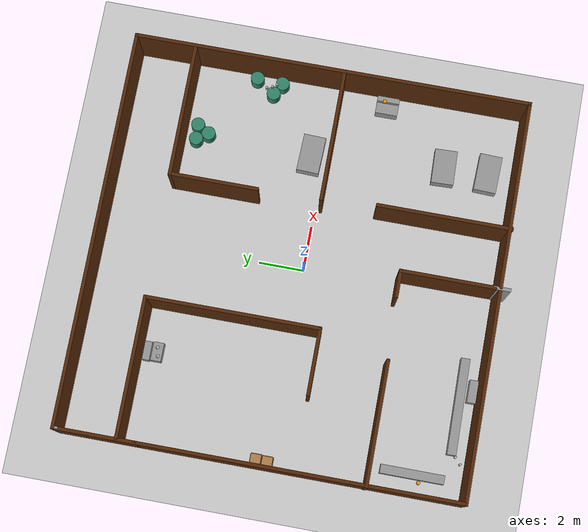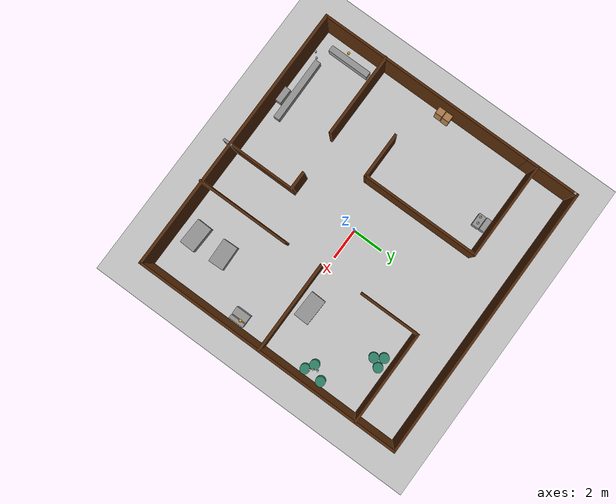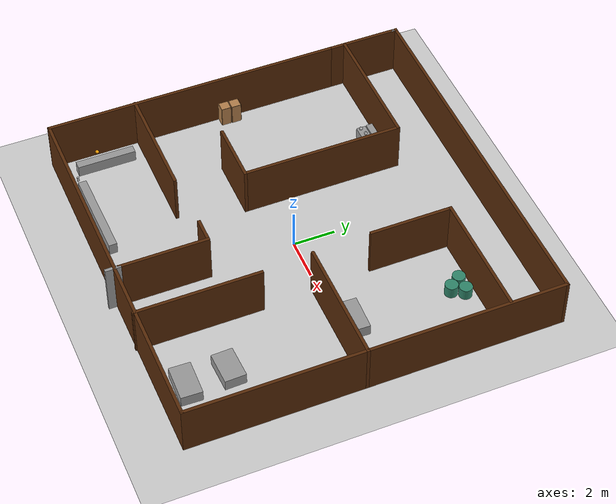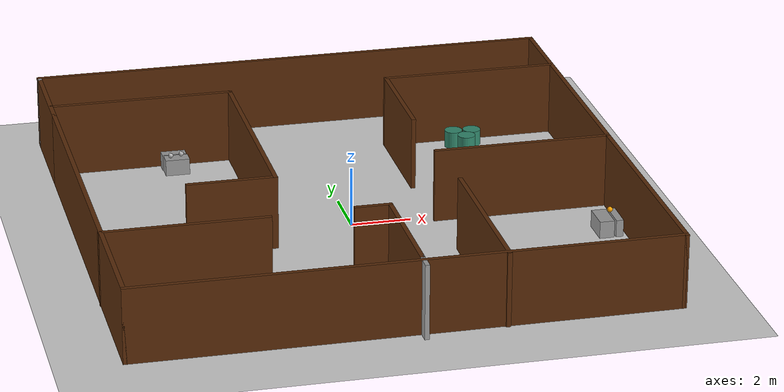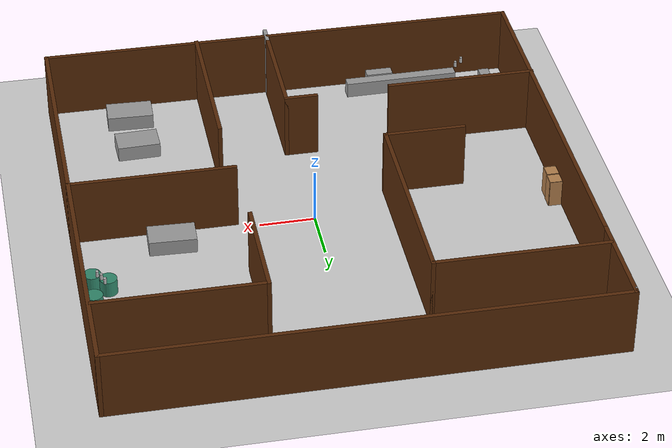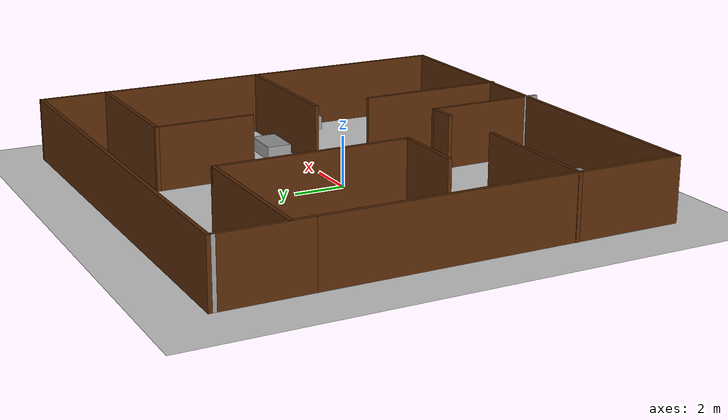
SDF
<sdf version="1.6">
 <world name="default">
  <light name="sun" type="directional">
   <pose>0 0 10 0 -0 0</pose>
   <diffuse>0.8 0.8 0.8 1</diffuse>
   <specular>0.2 0.2 0.2 1</specular>
   <attenuation>
    <range>1000</range>
    <constant>0.9</constant>
    <linear>0.01</linear>
    <quadratic>0.001</quadratic>
   </attenuation>
   <direction>-0.5 0.1 -0.9</direction>
  </light>
  <model name="ground_plane">
   <static>1</static>
   <link name="link">
    <collision name="collision">
     <geometry><plane><normal>0 0 1</normal><size>100 100</size></plane></geometry>
     <surface>
      <contact><collide_bitmask>65535</collide_bitmask></contact>
      <friction><ode><mu>100</mu><mu2>50</mu2></ode></friction>
     </surface>
    </collision>
    <visual name="visual">
     <cast_shadows>0</cast_shadows>
     <geometry><plane><normal>0 0 1</normal><size>100 100</size></plane></geometry>
     <material>
      <script><uri>file://media/materials/scripts/gazebo.material</uri><name>Gazebo/Grey</name></script>
     </material>
    </visual>
   </link>
  </model>
  <gravity>0 0 -9.8</gravity>
  <magnetic_field>6e-06 2.3e-05 -4.2e-05</magnetic_field>
  <atmosphere type="adiabatic"/>
  <physics name="default_physics" default="0" type="ode">
   <max_step_size>0.001</max_step_size>
   <real_time_factor>1</real_time_factor>
   <real_time_update_rate>1000</real_time_update_rate>
  </physics>
  <scene><ambient>0.4 0.4 0.4 1</ambient><background>0.7 0.7 0.7 1</background><shadows>1</shadows></scene>
  <audio><device>default</device></audio>
  <spherical_coordinates>
   <surface_model>EARTH_WGS84</surface_model>
   <latitude_deg>0</latitude_deg>
   <longitude_deg>0</longitude_deg>
   <elevation>0</elevation>
   <heading_deg>0</heading_deg>
  </spherical_coordinates>
  <model name="Untitled">
   <pose>-0.15852 0.10692 0 0 -0 0</pose>
   <link name="Wall_1">
    <collision name="Wall_1_Collision">
     <geometry><box><size>14.25 0.15 2.5</size></box></geometry>
     <pose>0 0 1.25 0 -0 0</pose>
    </collision>
    <visual name="Wall_1_Visual">
     <pose>0 0 1.25 0 -0 0</pose>
     <geometry><box><size>14.25 0.15 2.5</size></box></geometry>
     <material>
      <script><uri>file://media/materials/scripts/gazebo.material</uri><name>Gazebo/Grey</name></script>
      <ambient>0.341176 0.160784 0.0313726 1</ambient>
     </material>
     <meta><layer>0</layer></meta>
    </visual>
    <pose>-8.79002 -1.56412 0 0 -0 -1.5708</pose>
   </link>
   <link name="Wall_10">
    <collision name="Wall_10_Collision">
     <geometry><box><size>17.75 0.15 2.5</size></box></geometry>
     <pose>0 0 1.25 0 -0 0</pose>
    </collision>
    <visual name="Wall_10_Visual">
     <pose>0 0 1.25 0 -0 0</pose>
     <geometry><box><size>17.75 0.15 2.5</size></box></geometry>
     <material>
      <script><uri>file://media/materials/scripts/gazebo.material</uri><name>Gazebo/Grey</name></script>
      <ambient>0.341176 0.160784 0.0313726 1</ambient>
     </material>
     <meta><layer>0</layer></meta>
    </visual>
    <pose>0.009979 8.98588 0 0 -0 3.14159</pose>
   </link>
   <link name="Wall_11">
    <collision name="Wall_11_Collision">
     <geometry><box><size>3.65 0.15 2.5</size></box></geometry>
     <pose>0 0 1.25 0 -0 0</pose>
    </collision>
    <visual name="Wall_11_Visual">
     <pose>0 0 1.25 0 -0 0</pose>
     <geometry><box><size>3.65 0.15 2.5</size></box></geometry>
     <material>
      <script><uri>file://media/materials/scripts/gazebo.material</uri><name>Gazebo/Grey</name></script>
      <ambient>0.341176 0.160784 0.0313726 1</ambient>
     </material>
     <meta><layer>0</layer></meta>
    </visual>
    <pose>-8.79002 7.23588 0 0 -0 -1.5708</pose>
   </link>
   <link name="Wall_13">
    <collision name="Wall_13_Collision">
     <geometry><box><size>6.25 0.15 2.5</size></box></geometry>
     <pose>0 0 1.25 0 -0 0</pose>
    </collision>
    <visual name="Wall_13_Visual">
     <pose>0 0 1.25 0 -0 0</pose>
     <geometry><box><size>6.25 0.15 2.5</size></box></geometry>
     <material>
      <script><uri>file://media/materials/scripts/gazebo.material</uri><name>Gazebo/Grey</name></script>
      <ambient>0.341176 0.160784 0.0313726 1</ambient>
     </material>
     <meta><layer>0</layer></meta>
    </visual>
    <pose>-5.68038 6.27302 0 0 -0 0</pose>
   </link>
   <link name="Wall_14">
    <collision name="Wall_14_Collision">
     <geometry><box><size>7.75 0.15 2.5</size></box></geometry>
     <pose>0 0 1.25 0 -0 0</pose>
    </collision>
    <visual name="Wall_14_Visual">
     <pose>0 0 1.25 0 -0 0</pose>
     <geometry><box><size>7.75 0.15 2.5</size></box></geometry>
     <material>
      <script><uri>file://media/materials/scripts/gazebo.material</uri><name>Gazebo/Grey</name></script>
      <ambient>0.341176 0.160784 0.0313726 1</ambient>
     </material>
     <meta><layer>0</layer></meta>
    </visual>
    <pose>-2.63038 2.47302 0 0 -0 -1.5708</pose>
   </link>
   <link name="Wall_15">
    <collision name="Wall_15_Collision">
     <geometry><box><size>3 0.15 2.5</size></box></geometry>
     <pose>0 0 1.25 0 -0 0</pose>
    </collision>
    <visual name="Wall_15_Visual">
     <pose>0 0 1.25 0 -0 0</pose>
     <geometry><box><size>3 0.15 2.5</size></box></geometry>
     <material>
      <script><uri>file://media/materials/scripts/gazebo.material</uri><name>Gazebo/Grey</name></script>
      <ambient>0.341176 0.160784 0.0313726 1</ambient>
     </material>
     <meta><layer>0</layer></meta>
    </visual>
    <pose>-4.05538 -1.32698 0 0 -0 3.14159</pose>
   </link>
   <link name="Wall_17">
    <collision name="Wall_17_Collision">
     <geometry><box><size>5.5 0.15 2.5</size></box></geometry>
     <pose>0 0 1.25 0 -0 0</pose>
    </collision>
    <visual name="Wall_17_Visual">
     <pose>0 0 1.25 0 -0 0</pose>
     <geometry><box><size>5.5 0.15 2.5</size></box></geometry>
     <material>
      <script><uri>file://media/materials/scripts/gazebo.material</uri><name>Gazebo/Grey</name></script>
      <ambient>0.341176 0.160784 0.0313726 1</ambient>
     </material>
     <meta><layer>0</layer></meta>
    </visual>
    <pose>-6.13629 -4.40725 0 0 -0 0</pose>
   </link>
   <link name="Wall_19">
    <collision name="Wall_19_Collision">
     <geometry><box><size>4.25 0.15 2.5</size></box></geometry>
     <pose>0 0 1.25 0 -0 0</pose>
    </collision>
    <visual name="Wall_19_Visual">
     <pose>0 0 1.25 0 -0 0</pose>
     <geometry><box><size>4.25 0.15 2.5</size></box></geometry>
     <material>
      <script><uri>file://media/materials/scripts/gazebo.material</uri><name>Gazebo/Grey</name></script>
      <ambient>0.341176 0.160784 0.0313726 1</ambient>
     </material>
     <meta><layer>0</layer></meta>
    </visual>
    <pose>0.45304 -6.33588 0 0 -0 -1.5708</pose>
   </link>
   <link name="Wall_20">
    <collision name="Wall_20_Collision">
     <geometry><box><size>0.75 0.15 2.5</size></box></geometry>
     <pose>0 0 1.25 0 -0 0</pose>
    </collision>
    <visual name="Wall_20_Visual">
     <pose>0 0 1.25 0 -0 0</pose>
     <geometry><box><size>0.75 0.15 2.5</size></box></geometry>
     <material>
      <script><uri>file://media/materials/scripts/gazebo.material</uri><name>Gazebo/Grey</name></script>
      <ambient>1 1 1 1</ambient>
     </material>
     <meta><layer>0</layer></meta>
    </visual>
    <pose>0.45304 -8.68588 0 0 -0 -1.5708</pose>
   </link>
   <link name="Wall_23">
    <collision name="Wall_23_Collision">
     <geometry><box><size>1.25 0.15 2.5</size></box></geometry>
     <pose>0 0 1.25 0 -0 0</pose>
    </collision>
    <visual name="Wall_23_Visual">
     <pose>0 0 1.25 0 -0 0</pose>
     <geometry><box><size>1.25 0.15 2.5</size></box></geometry>
     <material>
      <script><uri>file://media/materials/scripts/gazebo.material</uri><name>Gazebo/Grey</name></script>
      <ambient>0.341176 0.160784 0.0313726 1</ambient>
     </material>
     <meta><layer>0</layer></meta>
    </visual>
    <pose>-0.09696 -4.28588 0 0 -0 3.14159</pose>
   </link>
   <link name="Wall_25">
    <collision name="Wall_25_Collision">
     <geometry><box><size>6 0.15 2.5</size></box></geometry>
     <pose>0 0 1.25 0 -0 0</pose>
    </collision>
    <visual name="Wall_25_Visual">
     <pose>0 0 1.25 0 -0 0</pose>
     <geometry><box><size>6 0.15 2.5</size></box></geometry>
     <material>
      <script><uri>file://media/materials/scripts/gazebo.material</uri><name>Gazebo/Grey</name></script>
      <ambient>0.341176 0.160784 0.0313726 1</ambient>
     </material>
     <meta><layer>0</layer></meta>
    </visual>
    <pose>3.12311 -5.75448 0 0 -0 -1.5708</pose>
   </link>
   <link name="Wall_29">
    <collision name="Wall_29_Collision">
     <geometry><box><size>6 0.15 2.5</size></box></geometry>
     <pose>0 0 1.25 0 -0 0</pose>
    </collision>
    <visual name="Wall_29_Visual">
     <pose>0 0 1.25 0 -0 0</pose>
     <geometry><box><size>6 0.15 2.5</size></box></geometry>
     <material>
      <script><uri>file://media/materials/scripts/gazebo.material</uri><name>Gazebo/Grey</name></script>
      <ambient>0.341176 0.160784 0.0313726 1</ambient>
     </material>
     <meta><layer>0</layer></meta>
    </visual>
    <pose>5.88629 -0.361691 0 0 -0 0</pose>
   </link>
   <link name="Wall_3">
    <collision name="Wall_3_Collision">
     <geometry><box><size>17.75 0.15 2.5</size></box></geometry>
     <pose>0 0 1.25 0 -0 0</pose>
    </collision>
    <visual name="Wall_3_Visual">
     <pose>0 0 1.25 0 -0 0</pose>
     <geometry><box><size>17.75 0.15 2.5</size></box></geometry>
     <material>
      <script><uri>file://media/materials/scripts/gazebo.material</uri><name>Gazebo/Grey</name></script>
      <ambient>0.341176 0.160784 0.0313726 1</ambient>
     </material>
     <meta><layer>0</layer></meta>
    </visual>
    <pose>0.009979 -8.61412 0 0 -0 0</pose>
   </link>
   <link name="Wall_31">
    <collision name="Wall_31_Collision">
     <geometry><box><size>6 0.15 2.5</size></box></geometry>
     <pose>0 0 1.25 0 -0 0</pose>
    </collision>
    <visual name="Wall_31_Visual">
     <pose>0 0 1.25 0 -0 0</pose>
     <geometry><box><size>6 0.15 2.5</size></box></geometry>
     <material>
      <script><uri>file://media/materials/scripts/gazebo.material</uri><name>Gazebo/Grey</name></script>
      <ambient>0.341176 0.160784 0.0313726 1</ambient>
     </material>
     <meta><layer>0</layer></meta>
    </visual>
    <pose>5.80537 6.31348 0 0 -0 0</pose>
   </link>
   <link name="Wall_33">
    <collision name="Wall_33_Collision">
     <geometry><box><size>4 0.15 2.5</size></box></geometry>
     <pose>0 0 1.25 0 -0 0</pose>
    </collision>
    <visual name="Wall_33_Visual">
     <pose>0 0 1.25 0 -0 0</pose>
     <geometry><box><size>4 0.15 2.5</size></box></geometry>
     <material>
      <script><uri>file://media/materials/scripts/gazebo.material</uri><name>Gazebo/Grey</name></script>
      <ambient>0.341176 0.160784 0.0313726 1</ambient>
     </material>
     <meta><layer>0</layer></meta>
    </visual>
    <pose>2.88037 4.38848 0 0 -0 -1.5708</pose>
   </link>
   <link name="Wall_4">
    <collision name="Wall_4_Collision">
     <geometry><box><size>17.75 0.15 2.5</size></box></geometry>
     <pose>0 0 1.25 0 -0 0</pose>
    </collision>
    <visual name="Wall_4_Visual">
     <pose>0 0 1.25 0 -0 0</pose>
     <geometry><box><size>17.75 0.15 2.5</size></box></geometry>
     <material>
      <script><uri>file://media/materials/scripts/gazebo.material</uri><name>Gazebo/Grey</name></script>
      <ambient>0.341176 0.160784 0.0313726 1</ambient>
     </material>
     <meta><layer>0</layer></meta>
    </visual>
    <pose>8.80998 0.185881 0 0 -0 1.5708</pose>
   </link>
   <link name="Wall_8">
    <collision name="Wall_8_Collision">
     <geometry><box><size>0.15 0.15 2.5</size></box></geometry>
     <pose>0 0 1.25 0 -0 0</pose>
    </collision>
    <visual name="Wall_8_Visual">
     <pose>0 0 1.25 0 -0 0</pose>
     <geometry><box><size>0.15 0.15 2.5</size></box></geometry>
     <material>
      <script><uri>file://media/materials/scripts/gazebo.material</uri><name>Gazebo/Grey</name></script>
      <ambient>1 1 1 1</ambient>
     </material>
     <meta><layer>0</layer></meta>
    </visual>
    <pose>-8.79002 8.83588 0 0 -0 0</pose>
   </link>
   <static>1</static>
  </model>
  <model name="Untitled_0">
   <link name="link_0">
    <inertial>
     <mass>0.243181</mass>
     <inertia>
      <ixx>0.0141855</ixx>
      <ixy>0</ixy>
      <ixz>0</ixz>
      <iyy>0.0141855</iyy>
      <iyz>0</iyz>
      <izz>0.0114259</izz>
     </inertia>
    </inertial>
    <pose>2e-06 -1e-06 0 0 -0 0</pose>
    <visual name="visual">
     <geometry><cylinder><radius>0.306546</radius><length>0.579707</length></cylinder></geometry>
     <material>
      <lighting>1</lighting>
      <script><uri>file://media/materials/scripts/gazebo.material</uri><name>Gazebo/Grey</name></script>
      <ambient>0.188 0.525 0.416 1</ambient>
      <shader type="vertex"><normal_map>__default__</normal_map></shader>
      <diffuse>0.188 0.525 0.416 1</diffuse>
      <specular>0 0 0 1</specular>
      <emissive>0 0 0 1</emissive>
     </material>
    </visual>
    <collision name="collision">
     <geometry><cylinder><radius>0.306546</radius><length>0.579707</length></cylinder></geometry>
     <surface>
      <friction>
       <ode><mu>1</mu><mu2>1</mu2><fdir1>0 0 0</fdir1><slip1>0</slip1><slip2>0</slip2></ode>
       <torsional>
        <coefficient>1</coefficient>
        <patch_radius>0</patch_radius>
        <surface_radius>0</surface_radius>
        <use_patch_radius>1</use_patch_radius>
        <ode><slip>0</slip></ode>
       </torsional>
      </friction>
      <bounce><restitution_coefficient>0</restitution_coefficient><threshold>1e+06</threshold></bounce>
      <contact>
       <collide_without_contact>0</collide_without_contact>
       <collide_without_contact_bitmask>1</collide_without_contact_bitmask>
       <collide_bitmask>1</collide_bitmask>
       <ode>
        <soft_cfm>0</soft_cfm>
        <soft_erp>0.2</soft_erp>
        <kp>1e+13</kp>
        <kd>1</kd>
        <max_vel>0.01</max_vel>
        <min_depth>0</min_depth>
       </ode>
       <bullet>
        <split_impulse>1</split_impulse>
        <split_impulse_penetration_threshold>-0.01</split_impulse_penetration_threshold>
        <soft_cfm>0</soft_cfm>
        <soft_erp>0.2</soft_erp>
        <kp>1e+13</kp>
        <kd>1</kd>
       </bullet>
      </contact>
     </surface>
    </collision>
   </link>
   <static>0</static>
   <pose>5.32766 5.32556 0.289851 0 0 -0.063666</pose>
  </model>
  <model name="Untitled_0_clone">
   <link name="link_0">
    <inertial>
     <mass>0.243181</mass>
     <inertia>
      <ixx>0.0141855</ixx>
      <ixy>0</ixy>
      <ixz>0</ixz>
      <iyy>0.0141855</iyy>
      <iyz>0</iyz>
      <izz>0.0114259</izz>
     </inertia>
    </inertial>
    <pose>2e-06 -1e-06 0 0 -0 0</pose>
    <visual name="visual">
     <geometry><cylinder><radius>0.306546</radius><length>0.587771</length></cylinder></geometry>
     <material>
      <lighting>1</lighting>
      <script><uri>file://media/materials/scripts/gazebo.material</uri><name>Gazebo/Grey</name></script>
      <ambient>0.188 0.525 0.416 1</ambient>
      <shader type="vertex"><normal_map>__default__</normal_map></shader>
      <diffuse>0.188 0.525 0.416 1</diffuse>
      <specular>0 0 0 1</specular>
      <emissive>0 0 0 1</emissive>
     </material>
    </visual>
    <collision name="collision">
     <geometry><cylinder><radius>0.306546</radius><length>0.587771</length></cylinder></geometry>
     <surface>
      <friction>
       <ode><mu>1</mu><mu2>1</mu2><fdir1>0 0 0</fdir1><slip1>0</slip1><slip2>0</slip2></ode>
       <torsional>
        <coefficient>1</coefficient>
        <patch_radius>0</patch_radius>
        <surface_radius>0</surface_radius>
        <use_patch_radius>1</use_patch_radius>
        <ode><slip>0</slip></ode>
       </torsional>
      </friction>
      <bounce><restitution_coefficient>0</restitution_coefficient><threshold>1e+06</threshold></bounce>
      <contact>
       <collide_without_contact>0</collide_without_contact>
       <collide_without_contact_bitmask>1</collide_without_contact_bitmask>
       <collide_bitmask>1</collide_bitmask>
       <ode>
        <soft_cfm>0</soft_cfm>
        <soft_erp>0.2</soft_erp>
        <kp>1e+13</kp>
        <kd>1</kd>
        <max_vel>0.01</max_vel>
        <min_depth>0</min_depth>
       </ode>
       <bullet>
        <split_impulse>1</split_impulse>
        <split_impulse_penetration_threshold>-0.01</split_impulse_penetration_threshold>
        <soft_cfm>0</soft_cfm>
        <soft_erp>0.2</soft_erp>
        <kp>1e+13</kp>
        <kd>1</kd>
       </bullet>
      </contact>
     </surface>
    </collision>
   </link>
   <static>0</static>
   <pose>4.99425 5.84043 0.293646 0 -0 0.15214</pose>
  </model>
  <model name="Untitled_0_clone_0">
   <link name="link_0">
    <inertial>
     <mass>0.243181</mass>
     <inertia>
      <ixx>0.0141855</ixx>
      <ixy>0</ixy>
      <ixz>0</ixz>
      <iyy>0.0141855</iyy>
      <iyz>0</iyz>
      <izz>0.0114259</izz>
     </inertia>
    </inertial>
    <pose>2e-06 -1e-06 0 0 -0 0</pose>
    <visual name="visual">
     <geometry><cylinder><radius>0.306546</radius><length>0.551301</length></cylinder></geometry>
     <material>
      <lighting>1</lighting>
      <script><uri>file://media/materials/scripts/gazebo.material</uri><name>Gazebo/Grey</name></script>
      <ambient>0.188 0.525 0.416 1</ambient>
      <shader type="vertex"><normal_map>__default__</normal_map></shader>
      <diffuse>0.188 0.525 0.416 1</diffuse>
      <specular>0 0 0 1</specular>
      <emissive>0 0 0 1</emissive>
     </material>
    </visual>
    <collision name="collision">
     <geometry><cylinder><radius>0.306546</radius><length>0.551301</length></cylinder></geometry>
     <surface>
      <friction>
       <ode><mu>1</mu><mu2>1</mu2><fdir1>0 0 0</fdir1><slip1>0</slip1><slip2>0</slip2></ode>
       <torsional>
        <coefficient>1</coefficient>
        <patch_radius>0</patch_radius>
        <surface_radius>0</surface_radius>
        <use_patch_radius>1</use_patch_radius>
        <ode><slip>0</slip></ode>
       </torsional>
      </friction>
      <bounce><restitution_coefficient>0</restitution_coefficient><threshold>1e+06</threshold></bounce>
      <contact>
       <collide_without_contact>0</collide_without_contact>
       <collide_without_contact_bitmask>1</collide_without_contact_bitmask>
       <collide_bitmask>1</collide_bitmask>
       <ode>
        <soft_cfm>0</soft_cfm>
        <soft_erp>0.2</soft_erp>
        <kp>1e+13</kp>
        <kd>1</kd>
        <max_vel>0.01</max_vel>
        <min_depth>0</min_depth>
       </ode>
       <bullet>
        <split_impulse>1</split_impulse>
        <split_impulse_penetration_threshold>-0.01</split_impulse_penetration_threshold>
        <soft_cfm>0</soft_cfm>
        <soft_erp>0.2</soft_erp>
        <kp>1e+13</kp>
        <kd>1</kd>
       </bullet>
      </contact>
     </surface>
    </collision>
   </link>
   <static>0</static>
   <pose>5.65495 5.87158 0.275651 0 -0 -0.047159</pose>
  </model>
  <model name="Untitled_0_clone_1">
   <link name="link_0">
    <inertial>
     <mass>0.243181</mass>
     <inertia>
      <ixx>0.0141855</ixx>
      <ixy>0</ixy>
      <ixz>0</ixz>
      <iyy>0.0141855</iyy>
      <iyz>0</iyz>
      <izz>0.0114259</izz>
     </inertia>
    </inertial>
    <pose>2e-06 -1e-06 0 0 -0 0</pose>
    <visual name="visual">
     <geometry><cylinder><radius>0.306546</radius><length>0.584194</length></cylinder></geometry>
     <material>
      <lighting>1</lighting>
      <script><uri>file://media/materials/scripts/gazebo.material</uri><name>Gazebo/Grey</name></script>
      <ambient>0.188 0.525 0.416 1</ambient>
      <shader type="vertex"><normal_map>__default__</normal_map></shader>
      <diffuse>0.188 0.525 0.416 1</diffuse>
      <specular>0 0 0 1</specular>
      <emissive>0 0 0 1</emissive>
     </material>
    </visual>
    <collision name="collision">
     <geometry><cylinder><radius>0.306546</radius><length>0.584194</length></cylinder></geometry>
     <surface>
      <friction>
       <ode><mu>1</mu><mu2>1</mu2><fdir1>0 0 0</fdir1><slip1>0</slip1><slip2>0</slip2></ode>
       <torsional>
        <coefficient>1</coefficient>
        <patch_radius>0</patch_radius>
        <surface_radius>0</surface_radius>
        <use_patch_radius>1</use_patch_radius>
        <ode><slip>0</slip></ode>
       </torsional>
      </friction>
      <bounce><restitution_coefficient>0</restitution_coefficient><threshold>1e+06</threshold></bounce>
      <contact>
       <collide_without_contact>0</collide_without_contact>
       <collide_without_contact_bitmask>1</collide_without_contact_bitmask>
       <collide_bitmask>1</collide_bitmask>
       <ode>
        <soft_cfm>0</soft_cfm>
        <soft_erp>0.2</soft_erp>
        <kp>1e+13</kp>
        <kd>1</kd>
        <max_vel>0.01</max_vel>
        <min_depth>0</min_depth>
       </ode>
       <bullet>
        <split_impulse>1</split_impulse>
        <split_impulse_penetration_threshold>-0.01</split_impulse_penetration_threshold>
        <soft_cfm>0</soft_cfm>
        <soft_erp>0.2</soft_erp>
        <kp>1e+13</kp>
        <kd>1</kd>
       </bullet>
      </contact>
     </surface>
    </collision>
   </link>
   <static>0</static>
   <pose>7.69368 2.78855 0.292093 0 0 -1.59377</pose>
  </model>
  <model name="Untitled_0_clone_2">
   <link name="link_0">
    <inertial>
     <mass>0.243181</mass>
     <inertia>
      <ixx>0.0141855</ixx>
      <ixy>0</ixy>
      <ixz>0</ixz>
      <iyy>0.0141855</iyy>
      <iyz>0</iyz>
      <izz>0.0114259</izz>
     </inertia>
    </inertial>
    <pose>2e-06 -1e-06 0 0 -0 0</pose>
    <visual name="visual">
     <geometry><cylinder><radius>0.306546</radius><length>0.592981</length></cylinder></geometry>
     <material>
      <lighting>1</lighting>
      <script><uri>file://media/materials/scripts/gazebo.material</uri><name>Gazebo/Grey</name></script>
      <ambient>0.188 0.525 0.416 1</ambient>
      <shader type="vertex"><normal_map>__default__</normal_map></shader>
      <diffuse>0.188 0.525 0.416 1</diffuse>
      <specular>0 0 0 1</specular>
      <emissive>0 0 0 1</emissive>
     </material>
    </visual>
    <collision name="collision">
     <geometry><cylinder><radius>0.306546</radius><length>0.592981</length></cylinder></geometry>
     <surface>
      <friction>
       <ode><mu>1</mu><mu2>1</mu2><fdir1>0 0 0</fdir1><slip1>0</slip1><slip2>0</slip2></ode>
       <torsional>
        <coefficient>1</coefficient>
        <patch_radius>0</patch_radius>
        <surface_radius>0</surface_radius>
        <use_patch_radius>1</use_patch_radius>
        <ode><slip>0</slip></ode>
       </torsional>
      </friction>
      <bounce><restitution_coefficient>0</restitution_coefficient><threshold>1e+06</threshold></bounce>
      <contact>
       <collide_without_contact>0</collide_without_contact>
       <collide_without_contact_bitmask>1</collide_without_contact_bitmask>
       <collide_bitmask>1</collide_bitmask>
       <ode>
        <soft_cfm>0</soft_cfm>
        <soft_erp>0.2</soft_erp>
        <kp>1e+13</kp>
        <kd>1</kd>
        <max_vel>0.01</max_vel>
        <min_depth>0</min_depth>
       </ode>
       <bullet>
        <split_impulse>1</split_impulse>
        <split_impulse_penetration_threshold>-0.01</split_impulse_penetration_threshold>
        <soft_cfm>0</soft_cfm>
        <soft_erp>0.2</soft_erp>
        <kp>1e+13</kp>
        <kd>1</kd>
       </bullet>
      </contact>
     </surface>
    </collision>
   </link>
   <static>0</static>
   <pose>8.21247 2.46182 0.296487 0 -0 0.046328</pose>
  </model>
  <model name="Untitled_0_clone_3">
   <link name="link_0">
    <inertial>
     <mass>0.243181</mass>
     <inertia>
      <ixx>0.0141855</ixx>
      <ixy>0</ixy>
      <ixz>0</ixz>
      <iyy>0.0141855</iyy>
      <iyz>0</iyz>
      <izz>0.0114259</izz>
     </inertia>
    </inertial>
    <pose>2e-06 -1e-06 0 0 -0 0</pose>
    <visual name="visual">
     <geometry><cylinder><radius>0.306546</radius><length>0.597391</length></cylinder></geometry>
     <material>
      <lighting>1</lighting>
      <script><uri>file://media/materials/scripts/gazebo.material</uri><name>Gazebo/Grey</name></script>
      <ambient>0.188 0.525 0.416 1</ambient>
      <shader type="vertex"><normal_map>__default__</normal_map></shader>
      <diffuse>0.188 0.525 0.416 1</diffuse>
      <specular>0 0 0 1</specular>
      <emissive>0 0 0 1</emissive>
     </material>
    </visual>
    <collision name="collision">
     <geometry><cylinder><radius>0.306546</radius><length>0.597391</length></cylinder></geometry>
     <surface>
      <friction>
       <ode><mu>1</mu><mu2>1</mu2><fdir1>0 0 0</fdir1><slip1>0</slip1><slip2>0</slip2></ode>
       <torsional>
        <coefficient>1</coefficient>
        <patch_radius>0</patch_radius>
        <surface_radius>0</surface_radius>
        <use_patch_radius>1</use_patch_radius>
        <ode><slip>0</slip></ode>
       </torsional>
      </friction>
      <bounce><restitution_coefficient>0</restitution_coefficient><threshold>1e+06</threshold></bounce>
      <contact>
       <collide_without_contact>0</collide_without_contact>
       <collide_without_contact_bitmask>1</collide_without_contact_bitmask>
       <collide_bitmask>1</collide_bitmask>
       <ode>
        <soft_cfm>0</soft_cfm>
        <soft_erp>0.2</soft_erp>
        <kp>1e+13</kp>
        <kd>1</kd>
        <max_vel>0.01</max_vel>
        <min_depth>0</min_depth>
       </ode>
       <bullet>
        <split_impulse>1</split_impulse>
        <split_impulse_penetration_threshold>-0.01</split_impulse_penetration_threshold>
        <soft_cfm>0</soft_cfm>
        <soft_erp>0.2</soft_erp>
        <kp>1e+13</kp>
        <kd>1</kd>
       </bullet>
      </contact>
     </surface>
    </collision>
   </link>
   <static>0</static>
   <pose>8.26515 3.62294 0.298695 0 -0 0.335465</pose>
  </model>
  <model name="unit_box">
   <pose>5.21841 0.602262 0.280367 0 -0 -0.034101</pose>
   <link name="link">
    <inertial>
     <mass>1</mass>
     <inertia>
      <ixx>0.166667</ixx>
      <ixy>0</ixy>
      <ixz>0</ixz>
      <iyy>0.166667</iyy>
      <iyz>0</iyz>
      <izz>0.166667</izz>
     </inertia>
    </inertial>
    <collision name="collision"><geometry><box><size>1.69431 1 0.560734</size></box></geometry></collision>
    <visual name="visual">
     <geometry><box><size>1.69431 1 0.560734</size></box></geometry>
     <material>
      <script><name>Gazebo/Grey</name><uri>file://media/materials/scripts/gazebo.material</uri></script>
     </material>
    </visual>
   </link>
  </model>
  <model name="beer">
   <link name="link">
    <pose>0 0 0.115 0 -0 0</pose>
    <inertial>
     <mass>0.39</mass>
     <inertia><ixx>0.00058</ixx><ixy>0</ixy><ixz>0</ixz><iyy>0.00058</iyy><iyz>0</iyz><izz>0.00019</izz></inertia>
    </inertial>
    <collision name="collision">
     <geometry><cylinder><radius>0.055</radius><length>0.23</length></cylinder></geometry>
    </collision>
    <visual name="visual">
     <geometry><cylinder><radius>0.055</radius><length>0.23</length></cylinder></geometry>
     <material>
      <script>
       <uri>model://beer/materials/scripts</uri>
       <uri>model://beer/materials/textures</uri>
       <name>Beer/Diffuse</name>
      </script>
     </material>
    </visual>
   </link>
   <pose>7.83155 3.12397 0.635012 -1e-06 2.6e-05 0.054014</pose>
  </model>
  <model name="beer_clone">
   <link name="link">
    <pose>0 0 0.115 0 -0 0</pose>
    <inertial>
     <mass>0.39</mass>
     <inertia><ixx>0.00058</ixx><ixy>0</ixy><ixz>0</ixz><iyy>0.00058</iyy><iyz>0</iyz><izz>0.00019</izz></inertia>
    </inertial>
    <collision name="collision">
     <geometry><cylinder><radius>0.055</radius><length>0.23</length></cylinder></geometry>
    </collision>
    <visual name="visual">
     <geometry><cylinder><radius>0.055</radius><length>0.23</length></cylinder></geometry>
     <material>
      <script>
       <uri>model://beer/materials/scripts</uri>
       <uri>model://beer/materials/textures</uri>
       <name>Beer/Diffuse</name>
      </script>
     </material>
    </visual>
   </link>
   <pose>8.05023 2.69495 0.635003 9e-06 3.4e-05 0.062193</pose>
  </model>
  <model name="unit_box_clone_1">
   <pose>5.70218 -5.38059 0.280362 -1e-05 0 0.03201</pose>
   <link name="link">
    <inertial>
     <mass>1</mass>
     <inertia>
      <ixx>0.166667</ixx>
      <ixy>0</ixy>
      <ixz>0</ixz>
      <iyy>0.166667</iyy>
      <iyz>0</iyz>
      <izz>0.166667</izz>
     </inertia>
    </inertial>
    <collision name="collision"><geometry><box><size>1.56456 1 0.560734</size></box></geometry></collision>
    <visual name="visual">
     <geometry><box><size>1.56456 1 0.560734</size></box></geometry>
     <material>
      <script><name>Gazebo/Grey</name><uri>file://media/materials/scripts/gazebo.material</uri></script>
     </material>
    </visual>
   </link>
  </model>
  <model name="unit_box_clone">
   <pose>5.75644 -7.35515 0.280367 0 -0 -0.0341</pose>
   <link name="link">
    <inertial>
     <mass>1</mass>
     <inertia>
      <ixx>0.166667</ixx>
      <ixy>0</ixy>
      <ixz>0</ixz>
      <iyy>0.166667</iyy>
      <iyz>0</iyz>
      <izz>0.166667</izz>
     </inertia>
    </inertial>
    <collision name="collision"><geometry><box><size>1.69431 1 0.560734</size></box></geometry></collision>
    <visual name="visual">
     <geometry><box><size>1.69431 1 0.560734</size></box></geometry>
     <material>
      <script><name>Gazebo/Grey</name><uri>file://media/materials/scripts/gazebo.material</uri></script>
     </material>
    </visual>
   </link>
  </model>
  <model name="beer_clone_clone_0">
   <link name="link">
    <pose>0 0 0.115 0 -0 0</pose>
    <inertial>
     <mass>0.39</mass>
     <inertia><ixx>0.00058</ixx><ixy>0</ixy><ixz>0</ixz><iyy>0.00058</iyy><iyz>0</iyz><izz>0.00019</izz></inertia>
    </inertial>
    <collision name="collision">
     <geometry><cylinder><radius>0.055</radius><length>0.23</length></cylinder></geometry>
    </collision>
    <visual name="visual">
     <geometry><cylinder><radius>0.055</radius><length>0.23</length></cylinder></geometry>
     <material>
      <script>
       <uri>model://beer/materials/scripts</uri>
       <uri>model://beer/materials/textures</uri>
       <name>Beer/Diffuse</name>
      </script>
     </material>
    </visual>
   </link>
   <pose>7.92795 2.8719 0.635012 -1e-06 2.7e-05 0.059275</pose>
  </model>
  <model name="cabinet">
   <static>1</static>
   <link name="cabinet_bottom_plate">
    <inertial>
     <pose>0 0 -1 0 -0 0</pose>
     <inertia><ixx>2.05</ixx><ixy>0</ixy><ixz>0</ixz><iyy>2.05</iyy><iyz>0</iyz><izz>2.05</izz></inertia>
     <mass>25</mass>
    </inertial>
    <collision name="cabinet_bottom_plate_geom">
     <pose>0 0 0.01 0 -0 0</pose>
     <geometry><box><size>0.45 0.45 0.02</size></box></geometry>
    </collision>
    <visual name="cabinet_bottom_plate_geom_visual">
     <pose>0 0 0.01 0 -0 0</pose>
     <geometry><box><size>0.45 0.45 0.02</size></box></geometry>
     <material>
      <script><uri>file://media/materials/scripts/gazebo.material</uri><name>Gazebo/Wood</name></script>
     </material>
    </visual>
    <collision name="cabinet_bottom_plate_geom_cabinet_back_plate">
     <pose>0.235 0 0.51 0 -0 0</pose>
     <geometry><box><size>0.02 0.45 1.02</size></box></geometry>
    </collision>
    <visual name="cabinet_bottom_plate_geom_cabinet_back_plate_visual">
     <pose>0.235 0 0.51 0 -0 0</pose>
     <geometry><box><size>0.02 0.45 1.02</size></box></geometry>
     <material>
      <script><uri>file://media/materials/scripts/gazebo.material</uri><name>Gazebo/Wood</name></script>
     </material>
    </visual>
    <collision name="cabinet_bottom_plate_geom_cabinet_left_plate">
     <pose>0 0.235 0.51 0 -0 0</pose>
     <geometry><box><size>0.45 0.02 1.02</size></box></geometry>
    </collision>
    <visual name="cabinet_bottom_plate_geom_cabinet_left_plate_visual">
     <pose>0 0.235 0.51 0 -0 0</pose>
     <geometry><box><size>0.45 0.02 1.02</size></box></geometry>
     <material>
      <script><uri>file://media/materials/scripts/gazebo.material</uri><name>Gazebo/Wood</name></script>
     </material>
    </visual>
    <collision name="cabinet_bottom_plate_geom_cabinet_middle_plate">
     <pose>0 0 0.51 0 -0 0</pose>
     <geometry><box><size>0.45 0.45 0.02</size></box></geometry>
    </collision>
    <visual name="cabinet_bottom_plate_geom_cabinet_middle_plate_visual">
     <pose>0 0 0.51 0 -0 0</pose>
     <geometry><box><size>0.45 0.45 0.02</size></box></geometry>
     <material>
      <script><uri>file://media/materials/scripts/gazebo.material</uri><name>Gazebo/Wood</name></script>
     </material>
    </visual>
    <collision name="cabinet_bottom_plate_geom_cabinet_right_plate">
     <pose>0 -0.235 0.51 0 -0 0</pose>
     <geometry><box><size>0.45 0.02 1.02</size></box></geometry>
    </collision>
    <visual name="cabinet_bottom_plate_geom_cabinet_right_plate_visual">
     <pose>0 -0.235 0.51 0 -0 0</pose>
     <geometry><box><size>0.45 0.02 1.02</size></box></geometry>
     <material>
      <script><uri>file://media/materials/scripts/gazebo.material</uri><name>Gazebo/Wood</name></script>
     </material>
    </visual>
    <collision name="cabinet_bottom_plate_geom_cabinet_top_plate">
     <pose>0 0 1.01 0 -0 0</pose>
     <geometry><box><size>0.45 0.45 0.02</size></box></geometry>
    </collision>
    <visual name="cabinet_bottom_plate_geom_cabinet_top_plate_visual">
     <pose>0 0 1.01 0 -0 0</pose>
     <geometry><box><size>0.45 0.45 0.02</size></box></geometry>
     <material>
      <script><uri>file://media/materials/scripts/gazebo.material</uri><name>Gazebo/Wood</name></script>
     </material>
    </visual>
   </link>
   <pose>-8.65787 0.016219 0 0 -0 0</pose>
  </model>
  <model name="cabinet_clone">
   <static>1</static>
   <link name="cabinet_bottom_plate">
    <inertial>
     <pose>0 0 -1 0 -0 0</pose>
     <inertia><ixx>2.05</ixx><ixy>0</ixy><ixz>0</ixz><iyy>2.05</iyy><iyz>0</iyz><izz>2.05</izz></inertia>
     <mass>25</mass>
    </inertial>
    <collision name="cabinet_bottom_plate_geom">
     <pose>0 0 0.01 0 -0 0</pose>
     <geometry><box><size>0.45 0.45 0.02</size></box></geometry>
    </collision>
    <visual name="cabinet_bottom_plate_geom_visual">
     <pose>0 0 0.01 0 -0 0</pose>
     <geometry><box><size>0.45 0.45 0.02</size></box></geometry>
     <material>
      <script><uri>file://media/materials/scripts/gazebo.material</uri><name>Gazebo/Wood</name></script>
     </material>
    </visual>
    <collision name="cabinet_bottom_plate_geom_cabinet_back_plate">
     <pose>0.235 0 0.51 0 -0 0</pose>
     <geometry><box><size>0.02 0.45 1.02</size></box></geometry>
    </collision>
    <visual name="cabinet_bottom_plate_geom_cabinet_back_plate_visual">
     <pose>0.235 0 0.51 0 -0 0</pose>
     <geometry><box><size>0.02 0.45 1.02</size></box></geometry>
     <material>
      <script><uri>file://media/materials/scripts/gazebo.material</uri><name>Gazebo/Wood</name></script>
     </material>
    </visual>
    <collision name="cabinet_bottom_plate_geom_cabinet_left_plate">
     <pose>0 0.235 0.51 0 -0 0</pose>
     <geometry><box><size>0.45 0.02 1.02</size></box></geometry>
    </collision>
    <visual name="cabinet_bottom_plate_geom_cabinet_left_plate_visual">
     <pose>0 0.235 0.51 0 -0 0</pose>
     <geometry><box><size>0.45 0.02 1.02</size></box></geometry>
     <material>
      <script><uri>file://media/materials/scripts/gazebo.material</uri><name>Gazebo/Wood</name></script>
     </material>
    </visual>
    <collision name="cabinet_bottom_plate_geom_cabinet_middle_plate">
     <pose>0 0 0.51 0 -0 0</pose>
     <geometry><box><size>0.45 0.45 0.02</size></box></geometry>
    </collision>
    <visual name="cabinet_bottom_plate_geom_cabinet_middle_plate_visual">
     <pose>0 0 0.51 0 -0 0</pose>
     <geometry><box><size>0.45 0.45 0.02</size></box></geometry>
     <material>
      <script><uri>file://media/materials/scripts/gazebo.material</uri><name>Gazebo/Wood</name></script>
     </material>
    </visual>
    <collision name="cabinet_bottom_plate_geom_cabinet_right_plate">
     <pose>0 -0.235 0.51 0 -0 0</pose>
     <geometry><box><size>0.45 0.02 1.02</size></box></geometry>
    </collision>
    <visual name="cabinet_bottom_plate_geom_cabinet_right_plate_visual">
     <pose>0 -0.235 0.51 0 -0 0</pose>
     <geometry><box><size>0.45 0.02 1.02</size></box></geometry>
     <material>
      <script><uri>file://media/materials/scripts/gazebo.material</uri><name>Gazebo/Wood</name></script>
     </material>
    </visual>
    <collision name="cabinet_bottom_plate_geom_cabinet_top_plate">
     <pose>0 0 1.01 0 -0 0</pose>
     <geometry><box><size>0.45 0.45 0.02</size></box></geometry>
    </collision>
    <visual name="cabinet_bottom_plate_geom_cabinet_top_plate_visual">
     <pose>0 0 1.01 0 -0 0</pose>
     <geometry><box><size>0.45 0.45 0.02</size></box></geometry>
     <material>
      <script><uri>file://media/materials/scripts/gazebo.material</uri><name>Gazebo/Wood</name></script>
     </material>
    </visual>
   </link>
   <pose>-8.6385 0.522542 0 0 -0 0</pose>
  </model>
  <model name="Orange">
   <static>1</static>
   <link name="link">
    <inertial>
     <mass>0.002</mass>
     <inertia>
      <ixx>3.41333e-07</ixx>
      <ixy>0</ixy>
      <ixz>0</ixz>
      <iyy>3.41333e-07</iyy>
      <iyz>0</iyz>
      <izz>3.41333e-07</izz>
     </inertia>
    </inertial>
    <collision name="person">
     <geometry><mesh><uri>model://Orange/meshes/Orange.dae</uri><scale>0.09 0.09 0.09</scale></mesh></geometry>
     <surface>
      <friction><ode><mu>0.01</mu><mu2>0.01</mu2></ode></friction>
      <contact><ode><kp>1e+07</kp><kd>1e+07</kd><min_depth>0.001</min_depth><max_vel>1.1</max_vel></ode></contact>
     </surface>
    </collision>
    <visual name="visual">
     <geometry><mesh><uri>model://Orange/meshes/Orange.dae</uri><scale>0.09 0.09 0.09</scale></mesh></geometry>
     <material>
      <ambient>1 0.64 0 1</ambient>
      <diffuse>1 0.64 0 1</diffuse>
      <specular>0.1 0.1 0.1 1</specular>
      <emissive>0 0 0 0</emissive>
     </material>
    </visual>
   </link>
   <pose>-8.3647 -6.52754 0.704866 0 -0 0</pose>
  </model>
  <model name="beer_clone_clone_0_clone">
   <link name="link">
    <pose>0 0 0.115 0 -0 0</pose>
    <inertial>
     <mass>0.39</mass>
     <inertia><ixx>0.00058</ixx><ixy>0</ixy><ixz>0</ixz><iyy>0.00058</iyy><iyz>0</iyz><izz>0.00019</izz></inertia>
    </inertial>
    <collision name="collision">
     <geometry><cylinder><radius>0.055</radius><length>0.23</length></cylinder></geometry>
    </collision>
    <visual name="visual">
     <geometry><cylinder><radius>0.055</radius><length>0.23</length></cylinder></geometry>
     <material>
      <script>
       <uri>model://beer/materials/scripts</uri>
       <uri>model://beer/materials/textures</uri>
       <name>Beer/Diffuse</name>
      </script>
     </material>
    </visual>
   </link>
   <pose>-7.27638 -8.16469 0.627528 2.6e-05 9.8e-05 0.061283</pose>
  </model>
  <model name="beer_clone_clone_0_clone_0">
   <link name="link">
    <pose>0 0 0.115 0 -0 0</pose>
    <inertial>
     <mass>0.39</mass>
     <inertia><ixx>0.00058</ixx><ixy>0</ixy><ixz>0</ixz><iyy>0.00058</iyy><iyz>0</iyz><izz>0.00019</izz></inertia>
    </inertial>
    <collision name="collision">
     <geometry><cylinder><radius>0.055</radius><length>0.23</length></cylinder></geometry>
    </collision>
    <visual name="visual">
     <geometry><cylinder><radius>0.055</radius><length>0.23</length></cylinder></geometry>
     <material>
      <script>
       <uri>model://beer/materials/scripts</uri>
       <uri>model://beer/materials/textures</uri>
       <name>Beer/Diffuse</name>
      </script>
     </material>
    </visual>
   </link>
   <pose>-6.99588 -7.90854 0.627526 1.2e-05 6.6e-05 0.051552</pose>
  </model>
  <model name="unit_box_0">
   <pose>-4.8044 5.6307 0.276671 0 0 -0.005993</pose>
   <link name="link">
    <inertial>
     <mass>1</mass>
     <inertia>
      <ixx>0.166667</ixx>
      <ixy>0</ixy>
      <ixz>0</ixz>
      <iyy>0.166667</iyy>
      <iyz>0</iyz>
      <izz>0.166667</izz>
     </inertia>
    </inertial>
    <collision name="collision">
     <geometry><box><size>0.824901 0.459784 0.553343</size></box></geometry>
    </collision>
    <visual name="visual">
     <geometry><box><size>0.824901 0.459784 0.553343</size></box></geometry>
     <material>
      <script><name>Gazebo/Grey</name><uri>file://media/materials/scripts/gazebo.material</uri></script>
     </material>
    </visual>
   </link>
  </model>
  <model name="unit_box_0_clone">
   <pose>-4.8335 6.07549 0.276671 0 -0 0.004961</pose>
   <link name="link">
    <inertial>
     <mass>1</mass>
     <inertia>
      <ixx>0.166667</ixx>
      <ixy>0</ixy>
      <ixz>0</ixz>
      <iyy>0.166667</iyy>
      <iyz>0</iyz>
      <izz>0.166667</izz>
     </inertia>
    </inertial>
    <collision name="collision">
     <geometry><box><size>0.824901 0.325179 0.553343</size></box></geometry>
    </collision>
    <visual name="visual">
     <geometry><box><size>0.824901 0.325179 0.553343</size></box></geometry>
     <material>
      <script><name>Gazebo/Grey</name><uri>file://media/materials/scripts/gazebo.material</uri></script>
     </material>
    </visual>
   </link>
  </model>
  <model name="AppleLeaf">
   <static>1</static>
   <link name="link">
    <inertial>
     <mass>0.002</mass>
     <inertia>
      <ixx>3.41333e-07</ixx>
      <ixy>0</ixy>
      <ixz>0</ixz>
      <iyy>3.41333e-07</iyy>
      <iyz>0</iyz>
      <izz>3.41333e-07</izz>
     </inertia>
    </inertial>
    <collision name="person">
     <geometry>
      <mesh><uri>model://AppleLeaf/meshes/AppleLeaf.dae</uri><scale>0.002 0.002 0.002</scale></mesh>
     </geometry>
     <surface>
      <friction><ode><mu>0.01</mu><mu2>0.01</mu2></ode></friction>
      <contact><ode><kp>1e+07</kp><kd>1e+07</kd><min_depth>0.001</min_depth><max_vel>1.1</max_vel></ode></contact>
     </surface>
    </collision>
    <visual name="visual">
     <geometry>
      <mesh><uri>model://AppleLeaf/meshes/AppleLeaf.dae</uri><scale>0.002 0.002 0.002</scale></mesh>
     </geometry>
    </visual>
   </link>
   <pose>-4.64183 5.63265 0.67488 0 -0 0</pose>
  </model>
  <model name="AppleLeaf_clone_0">
   <static>1</static>
   <link name="link">
    <inertial>
     <mass>0.002</mass>
     <inertia>
      <ixx>3.41333e-07</ixx>
      <ixy>0</ixy>
      <ixz>0</ixz>
      <iyy>3.41333e-07</iyy>
      <iyz>0</iyz>
      <izz>3.41333e-07</izz>
     </inertia>
    </inertial>
    <collision name="person">
     <geometry>
      <mesh><uri>model://AppleLeaf/meshes/AppleLeaf.dae</uri><scale>0.002 0.002 0.002</scale></mesh>
     </geometry>
     <surface>
      <friction><ode><mu>0.01</mu><mu2>0.01</mu2></ode></friction>
      <contact><ode><kp>1e+07</kp><kd>1e+07</kd><min_depth>0.001</min_depth><max_vel>1.1</max_vel></ode></contact>
     </surface>
    </collision>
    <visual name="visual">
     <geometry>
      <mesh><uri>model://AppleLeaf/meshes/AppleLeaf.dae</uri><scale>0.002 0.002 0.002</scale></mesh>
     </geometry>
    </visual>
   </link>
   <pose>-5.01707 5.54635 0.67488 0 -0 0</pose>
  </model>
  <model name="unit_box_1">
   <pose>7.88839 -2.39074 0.289742 0 -0 8e-06</pose>
   <link name="link">
    <inertial>
     <mass>1</mass>
     <inertia>
      <ixx>0.166667</ixx>
      <ixy>0</ixy>
      <ixz>0</ixz>
      <iyy>0.166667</iyy>
      <iyz>0</iyz>
      <izz>0.166667</izz>
     </inertia>
    </inertial>
    <collision name="collision"><geometry><box><size>0.495011 1 0.579484</size></box></geometry></collision>
    <visual name="visual">
     <geometry><box><size>0.495011 1 0.579484</size></box></geometry>
     <material>
      <script><name>Gazebo/Grey</name><uri>file://media/materials/scripts/gazebo.material</uri></script>
     </material>
    </visual>
   </link>
  </model>
  <model name="unit_box_1_clone">
   <pose>8.32219 -2.3906 0.289742 0 -2e-06 -0.006351</pose>
   <link name="link">
    <inertial>
     <mass>1</mass>
     <inertia>
      <ixx>0.166667</ixx>
      <ixy>0</ixy>
      <ixz>0</ixz>
      <iyy>0.166667</iyy>
      <iyz>0</iyz>
      <izz>0.166667</izz>
     </inertia>
    </inertial>
    <collision name="collision"><geometry><box><size>0.244461 1 0.579484</size></box></geometry></collision>
    <visual name="visual">
     <geometry><box><size>0.244461 1 0.579484</size></box></geometry>
     <material>
      <script><name>Gazebo/Grey</name><uri>file://media/materials/scripts/gazebo.material</uri></script>
     </material>
    </visual>
   </link>
  </model>
  <model name="Orange_clone">
   <static>1</static>
   <link name="link">
    <inertial>
     <mass>0.002</mass>
     <inertia>
      <ixx>3.41333e-07</ixx>
      <ixy>0</ixy>
      <ixz>0</ixz>
      <iyy>3.41333e-07</iyy>
      <iyz>0</iyz>
      <izz>3.41333e-07</izz>
     </inertia>
    </inertial>
    <collision name="person">
     <geometry><mesh><uri>model://Orange/meshes/Orange.dae</uri><scale>0.09 0.09 0.09</scale></mesh></geometry>
     <surface>
      <friction><ode><mu>0.01</mu><mu2>0.01</mu2></ode></friction>
      <contact><ode><kp>1e+07</kp><kd>1e+07</kd><min_depth>0.001</min_depth><max_vel>1.1</max_vel></ode></contact>
     </surface>
    </collision>
    <visual name="visual">
     <geometry><mesh><uri>model://Orange/meshes/Orange.dae</uri><scale>0.09 0.09 0.09</scale></mesh></geometry>
     <material>
      <ambient>1 0.64 0 1</ambient>
      <diffuse>1 0.64 0 1</diffuse>
      <specular>0.1 0.1 0.1 1</specular>
      <emissive>0 0 0 0</emissive>
     </material>
    </visual>
   </link>
   <pose>8.17195 -2.23176 0.704866 0 -0 0</pose>
  </model>
  <model name="unit_box_clone_0">
   <pose>-4.79021 -7.73135 0.287065 -7e-06 -0.000604 0.01222</pose>
   <link name="link">
    <inertial>
     <mass>1</mass>
     <inertia>
      <ixx>0.166667</ixx>
      <ixy>0</ixy>
      <ixz>0</ixz>
      <iyy>0.166667</iyy>
      <iyz>0</iyz>
      <izz>0.166667</izz>
     </inertia>
    </inertial>
    <collision name="collision"><geometry><box><size>4.25377 0.393579 0.576691</size></box></geometry></collision>
    <visual name="visual">
     <geometry><box><size>4.25377 0.393579 0.576691</size></box></geometry>
     <material>
      <script><name>Gazebo/Grey</name><uri>file://media/materials/scripts/gazebo.material</uri></script>
     </material>
    </visual>
   </link>
  </model>
  <model name="unit_box_2">
   <pose>-4.04108 -8.23487 0.274487 0 0 -1e-06</pose>
   <link name="link">
    <inertial>
     <mass>1</mass>
     <inertia>
      <ixx>0.166667</ixx>
      <ixy>0</ixy>
      <ixz>0</ixz>
      <iyy>0.166667</iyy>
      <iyz>0</iyz>
      <izz>0.166667</izz>
     </inertia>
    </inertial>
    <collision name="collision"><geometry><box><size>1 0.384407 0.548975</size></box></geometry></collision>
    <visual name="visual">
     <geometry><box><size>1 0.384407 0.548975</size></box></geometry>
     <material>
      <script><name>Gazebo/Grey</name><uri>file://media/materials/scripts/gazebo.material</uri></script>
     </material>
    </visual>
   </link>
  </model>
  <model name="unit_box_clone_0_clone">
   <pose>-8.0309 -6.22694 0.288155 0 -0.000137 -1.57145</pose>
   <link name="link">
    <inertial>
     <mass>1</mass>
     <inertia>
      <ixx>0.166667</ixx>
      <ixy>0</ixy>
      <ixz>0</ixz>
      <iyy>0.166667</iyy>
      <iyz>0</iyz>
      <izz>0.166667</izz>
     </inertia>
    </inertial>
    <collision name="collision"><geometry><box><size>2.80706 0.393579 0.576694</size></box></geometry></collision>
    <visual name="visual">
     <geometry><box><size>2.80706 0.393579 0.576694</size></box></geometry>
     <material>
      <script><name>Gazebo/Grey</name><uri>file://media/materials/scripts/gazebo.material</uri></script>
     </material>
    </visual>
   </link>
  </model>
 </world>
</sdf>
